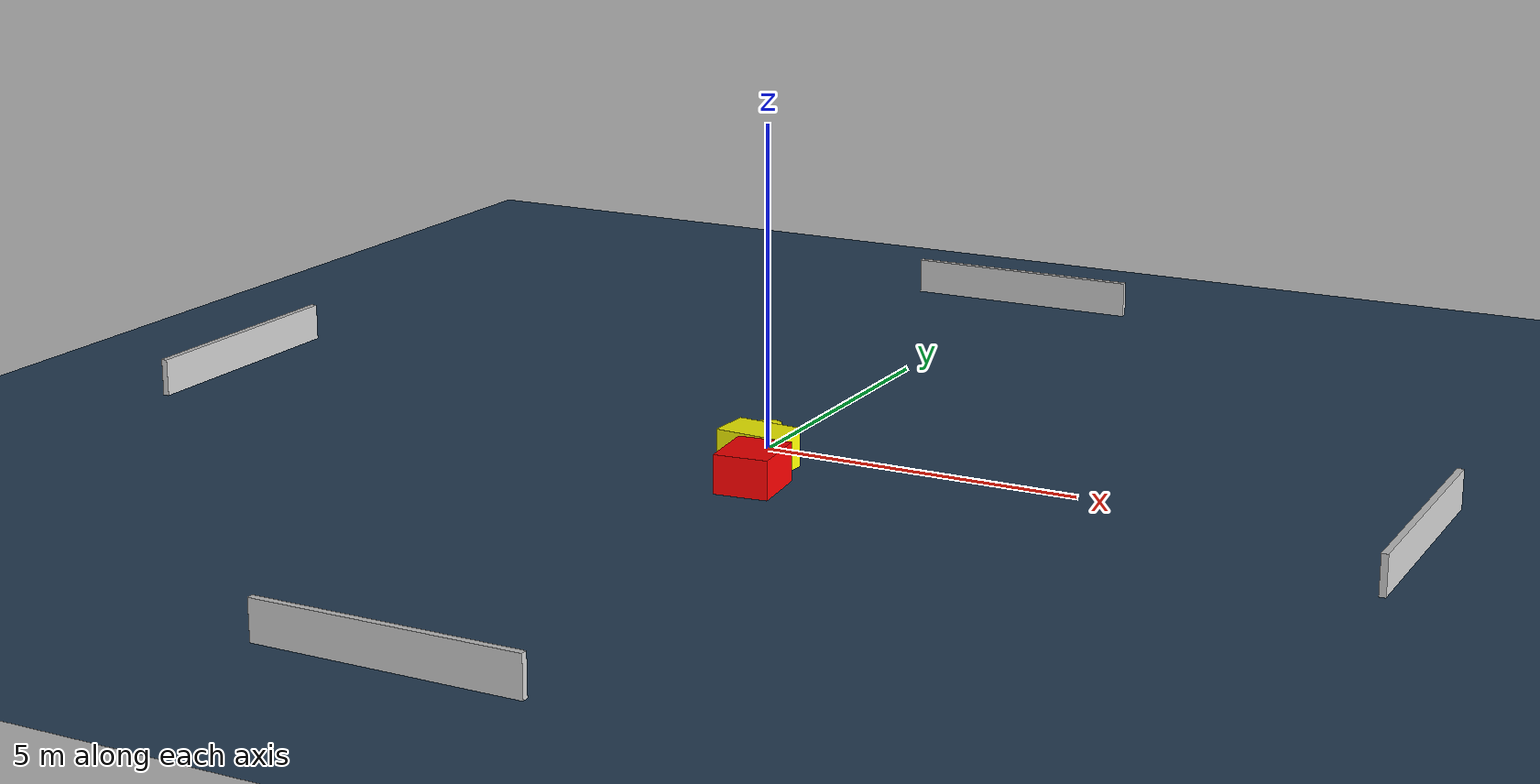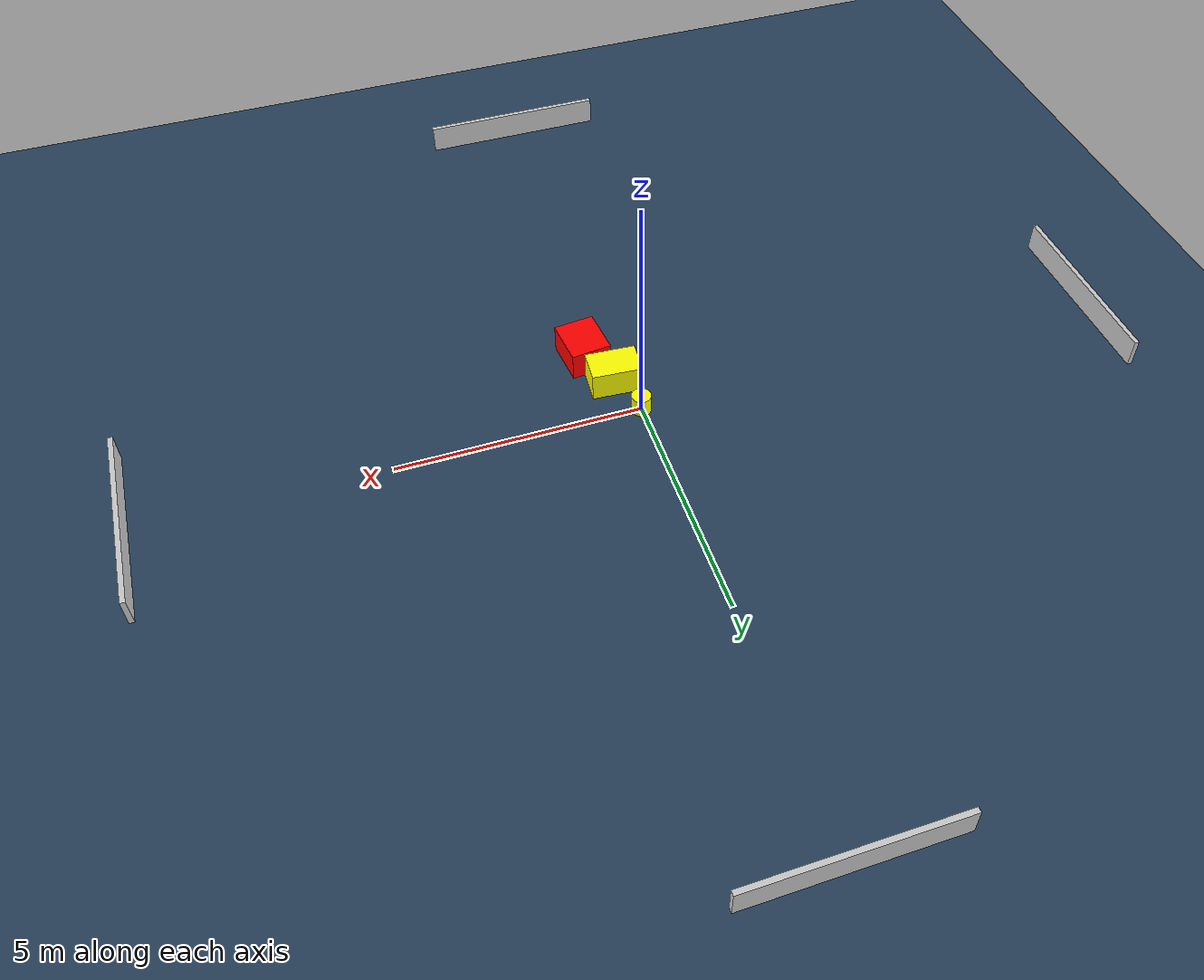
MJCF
<?xml version="1.0" ?>
<mujoco model="generated_environment">
  <option timestep="0.01" integrator="RK4" cone="elliptic"/>
  <default>
    <geom density="1"/>
  </default>
  <asset>
    <texture builtin="gradient" height="3072" name="skybox" rgb1="0.3 0.5 0.7" rgb2="0 0 0" type="skybox" width="512"/>
    <texture builtin="checker" height="300" name="groundplane" rgb1="0.2 0.3 0.4" rgb2="0.1 0.2 0.3" type="2d" width="300"/>
    <material name="groundplane" reflectance="0.2" texrepeat="5 5" texture="groundplane"/>
  </asset>
  <worldbody>
    <light dir="0 0 -1" directional="true" pos="0 0 1.5"/>
    <geom condim="3" friction="0.5 0.005 0.001" material="groundplane" name="floor" pos="0 0 0" size="0 0 0.05" type="plane"/>
    <body name="walls">
      <geom name="wall_1" condim="4" pos="-10.0 0.0 0.3" rgba="0.800000011920929 0.800000011920929 0.800000011920929 1.0" size="0.05 2.0 0.3" type="box"/>
      <geom name="wall_2" condim="4" pos="10.0 0.0 0.3" rgba="0.800000011920929 0.800000011920929 0.800000011920929 1.0" size="0.05 2.0 0.3" type="box"/>
      <geom name="wall_3" condim="4" pos="0.0 -10.0 0.3" rgba="0.800000011920929 0.800000011920929 0.800000011920929 1.0" size="2.0 0.05 0.3" type="box"/>
      <geom name="wall_4" condim="4" pos="0.0 10.0 0.3" rgba="0.800000011920929 0.800000011920929 0.800000011920929 1.0" size="2.0 0.05 0.3" type="box"/>
    </body>
    <body name="robot">
      <joint name="joint_x" type="slide" pos="0 0 0" axis="1 0 0"/>
      <joint name="joint_y" type="slide" pos="0 0 0" axis="0 1 0"/>
      <geom name="robot" type="cylinder" pos="0.0 0.0 0.2" size="0.2 0.2 0.0" mass="5.0" friction="1.0 0.005 0.0001" condim="4" rgba="1.0 1.0 0.0 1.0"/>
    </body>
    <body name="obstacle_1_movable">
      <geom name="obstacle_1_movable" condim="4" pos="0.28880339669008503 -0.8889998466812673 0.3" euler="0 0 356.0989017768456" friction="0.0 0.005 0.001" rgba="1.0 1.0 0.0 1.0" size="0.5196038549115192 0.34334997738729567 0.3" type="box" mass="0.1"/>
      <joint type="free"/>
    </body>
    <body name="obstacle_2_static">
      <geom name="obstacle_2_static" condim="4" pos="0.6726680486444242 -1.790750186292371 0.3" euler="0 0 96.00395126361795" friction="0.0 0.005 0.001" rgba="1.0 0.0 0.0 1.0" size="0.4863696130644904 0.41844411966705497 0.3" type="box"/>
    </body>
  </worldbody>
  <actuator>
    <motor name="actuator_x" joint="joint_x" gear="1" ctrlrange="-1 1"/>
    <motor name="actuator_y" joint="joint_y" gear="1" ctrlrange="-1 1"/>
  </actuator>
</mujoco>
